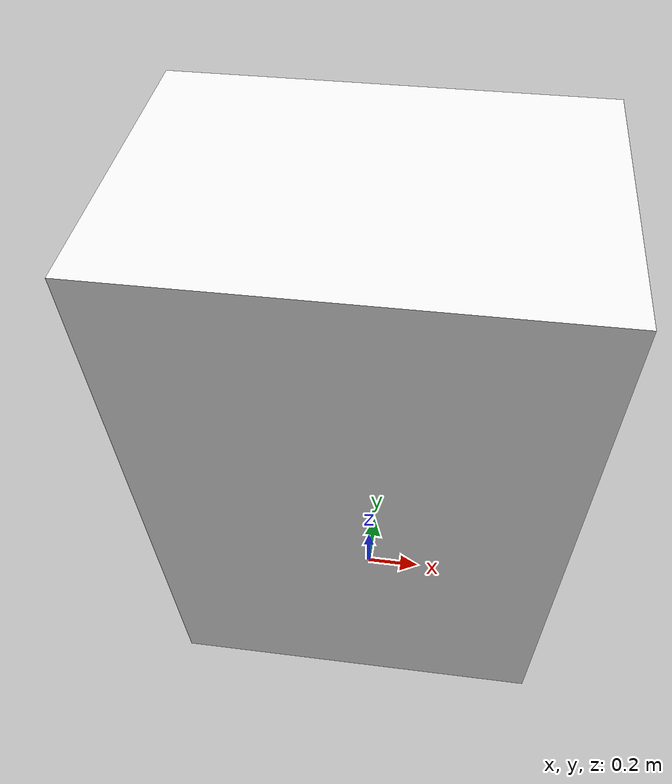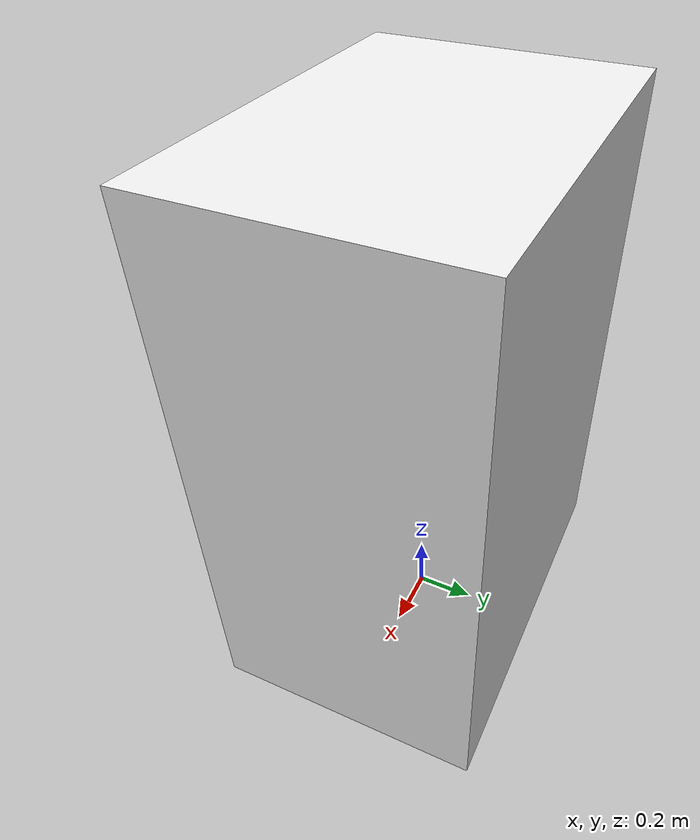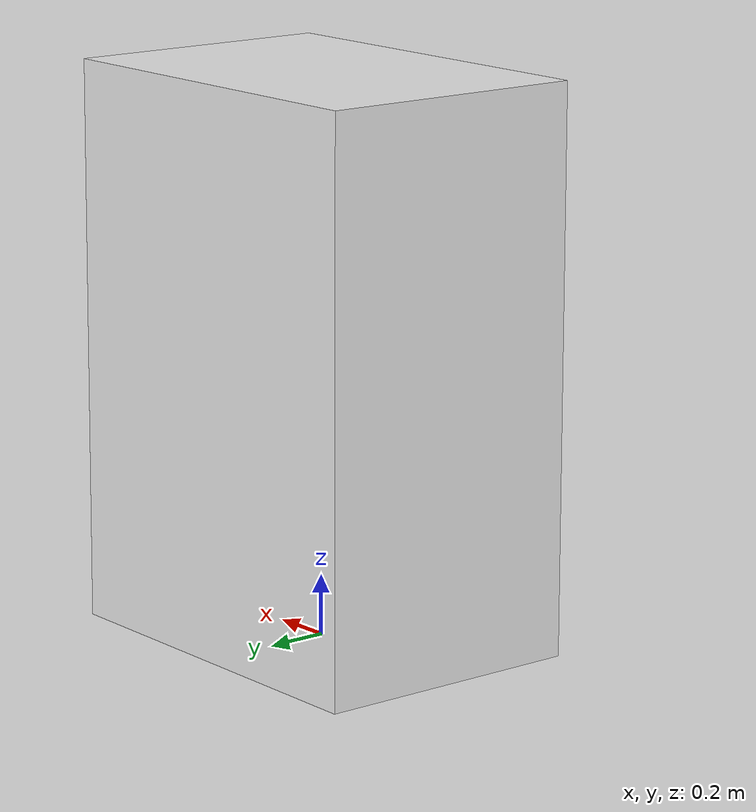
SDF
<?xml version='1.0'?>
<sdf version='1.7'>
  <model name='HVAC'>
    <link name="link">
      <collision name='HVAC_Collision'>
        <geometry>
          <box>
            <size>1.27 0.9 1.83</size>
          </box>
        </geometry>
        <pose>0 0 0.915 0 -0 0</pose>
      </collision>
      <visual name='HVAC_Visual'>
        <pose>0 0 0.915 0 -0 0</pose>
        <geometry>
          <box>
            <size>1.27 0.9 1.83</size>
          </box>
        </geometry>
        <material>
          <script>
            <uri>file://media/materials/scripts/gazebo.material</uri>
            <name>Gazebo/White</name>
          </script>
          <ambient>1 1 1 1</ambient>
        </material>
        <meta>
          <layer>0</layer>
        </meta>
      </visual>
    </link>
    <static>1</static>
  </model>
</sdf>
